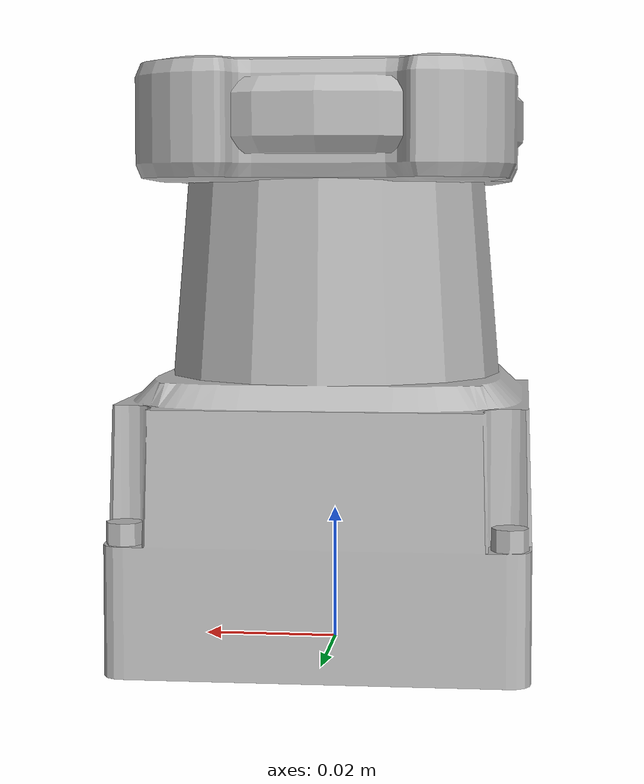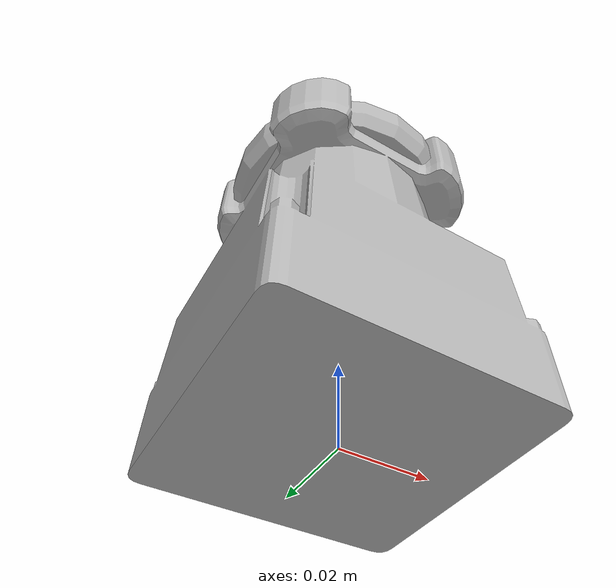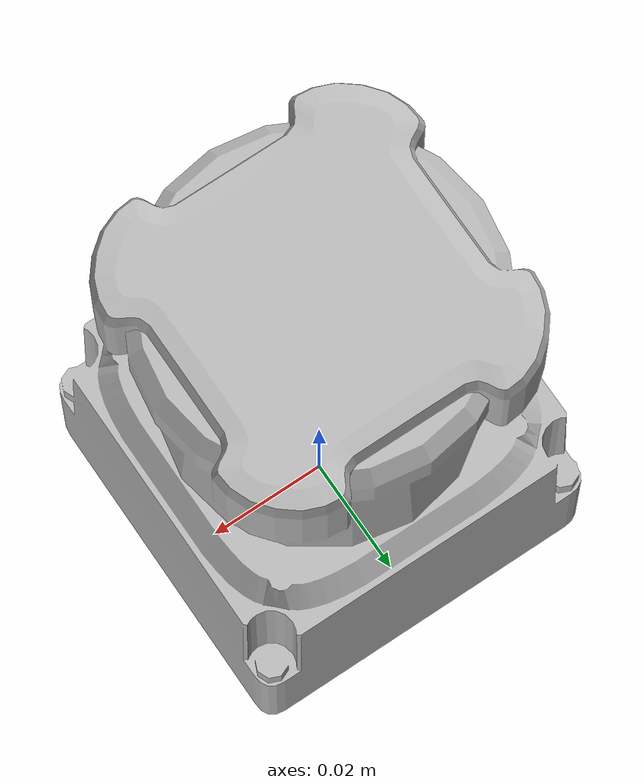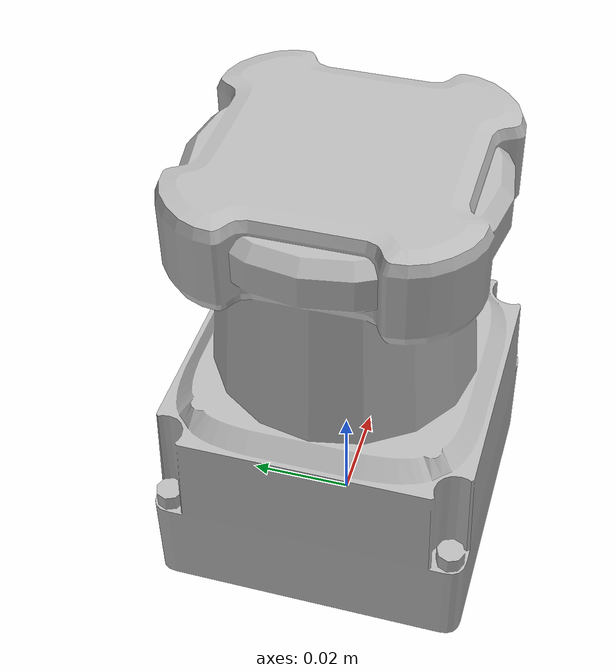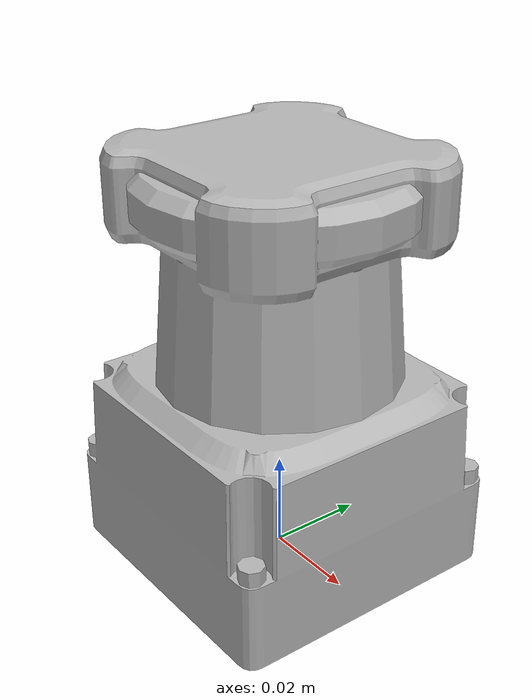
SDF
<?xml version="1.0"?>
<sdf version="1.9">
  <model name="lidar_3d_local">
    <link name="link">
      <pose>0 0 0 0 0 0</pose>
      <inertial>
        <pose>0 0 0.0435 0 0 0</pose>
        <mass>0.37</mass>
        <inertia>
          <ixx>0.000344</ixx><ixy>0</ixy><ixz>0</ixz>
          <iyy>0.000344</iyy><iyz>0</iyz><izz>0.000222</izz>
        </inertia>
      </inertial>

      <collision name="collision_base">
        <pose>0 0 0.0205 0 0 0</pose>
        <geometry><box><size>0.06 0.06 0.041</size></box></geometry>
      </collision>
      <collision name="collision_mid">
        <pose>0 0 0.055 0 0 0</pose>
        <geometry><cylinder><radius>0.025</radius><length>0.028</length></cylinder></geometry>
      </collision>
      <collision name="collision_top">
        <pose>0 0 0.078 0 0 0</pose>
        <geometry><box><size>0.056 0.056 0.018</size></box></geometry>
      </collision>

      <visual name="visual">
        <geometry>
          <mesh><uri>model://lidar_3d_local/meshes/lidar_3d_local.dae</uri></mesh>
        </geometry>
      </visual>

      <!-- LIDAR: native Gz gpu_lidar, publishes to /lidar_3d_local/points -->
      <sensor name='lidar_3d_local' type='gpu_lidar'>
        <topic>/lidar_3d_local/points</topic>
        <visualize>0</visualize>
        <update_rate>10</update_rate>
        <lidar>
          <scan>
            <horizontal>
              <samples>440</samples>
              <resolution>1</resolution>
              <min_angle>-3.14159</min_angle>
              <max_angle>3.14159</max_angle>
            </horizontal>
            <vertical>
              <samples>16</samples>
              <resolution>1</resolution>
              <min_angle>-0.261799</min_angle>
              <max_angle>0.261799</max_angle>
            </vertical>
          </scan>
          <range>
            <min>0.9</min>
            <max>130.0</max>
            <resolution>0.001</resolution>
          </range>
          <noise>
            <type>gaussian</type>
            <mean>0</mean>
            <stddev>0.0003</stddev>
          </noise>
        </lidar>
        <pose>0 0 0.0435 0 0 0</pose>
      </sensor>

      <!-- IMU: native Gz imu, publishes to /imu_raw -->
      <sensor name='imu_sensor' type='imu'>
        <always_on>1</always_on>
        <update_rate>200</update_rate>
        <topic>/imu_raw</topic>
        <imu>
          <angular_velocity>
            <x><noise type='gaussian'><mean>0</mean><stddev>0</stddev></noise></x>
            <y><noise type='gaussian'><mean>0</mean><stddev>0</stddev></noise></y>
            <z><noise type='gaussian'><mean>0</mean><stddev>0</stddev></noise></z>
          </angular_velocity>
          <linear_acceleration>
            <x><noise type='gaussian'><mean>0</mean><stddev>0</stddev></noise></x>
            <y><noise type='gaussian'><mean>0</mean><stddev>0</stddev></noise></y>
            <z><noise type='gaussian'><mean>0</mean><stddev>0</stddev></noise></z>
          </linear_acceleration>
          <enable_orientation>1</enable_orientation>
        </imu>
        <pose>0 0 0.0435 0 0 0</pose>
      </sensor>

    </link>
  </model>
</sdf>
